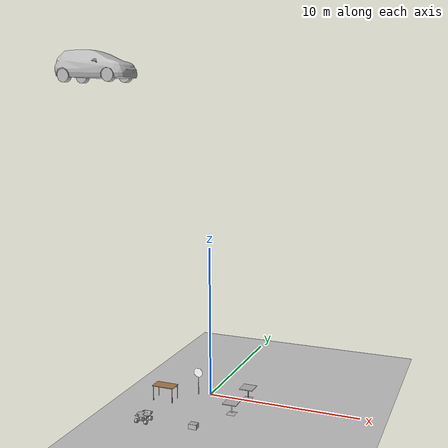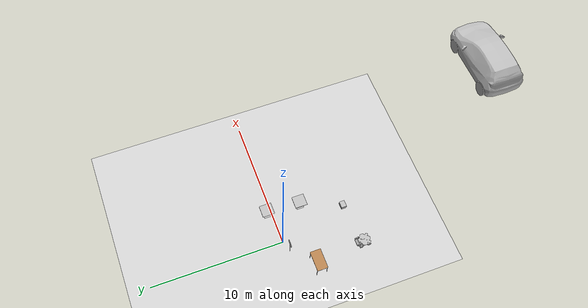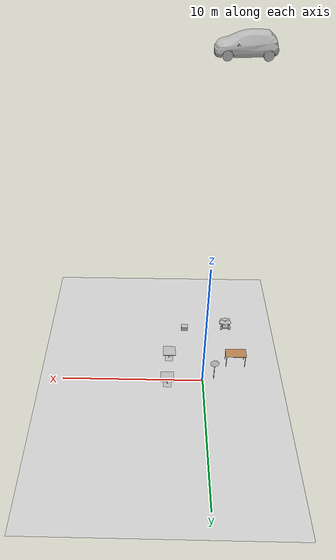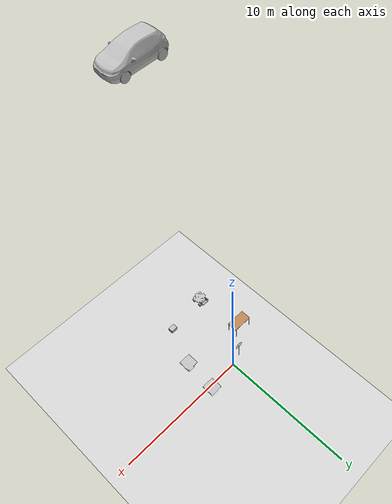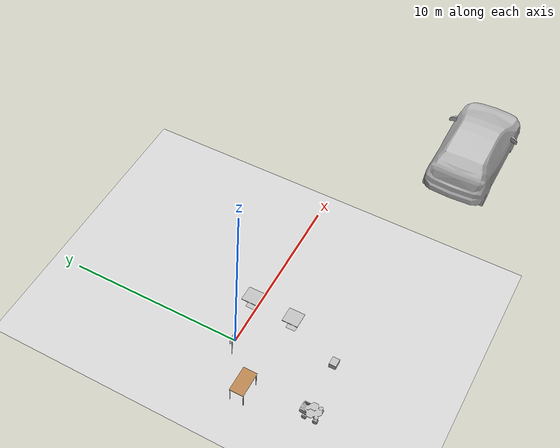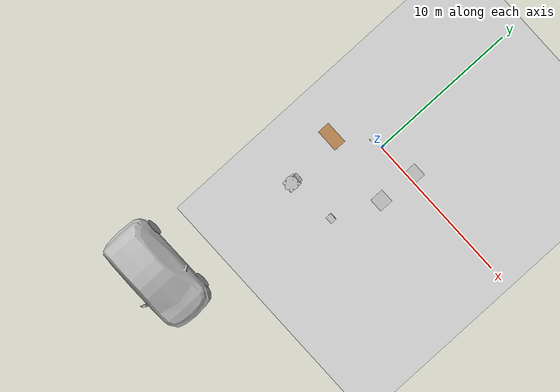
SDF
<sdf version="1.7">
 <world name="default">
  <light name="sun" type="directional">
   <pose>0 0 10 0 -0 0</pose>
   <diffuse>0.8 0.8 0.8 1</diffuse>
   <specular>0.2 0.2 0.2 1</specular>
   <attenuation>
    <range>1000</range>
    <constant>0.9</constant>
    <linear>0.01</linear>
    <quadratic>0.001</quadratic>
   </attenuation>
   <direction>-0.5 0.1 -0.9</direction>
   <spot><inner_angle>0</inner_angle><outer_angle>0</outer_angle><falloff>0</falloff></spot>
  </light>
  <model name="ground_plane">
   <static>1</static>
   <link name="link">
    <collision name="collision">
     <geometry><plane><normal>0 0 1</normal><size>100 100</size></plane></geometry>
     <surface>
      <contact><collide_bitmask>65535</collide_bitmask></contact>
      <friction><ode><mu>100</mu><mu2>50</mu2></ode></friction>
     </surface>
    </collision>
    <visual name="visual">
     <cast_shadows>0</cast_shadows>
     <geometry><plane><normal>0 0 1</normal><size>100 100</size></plane></geometry>
     <material>
      <script><uri>file://media/materials/scripts/gazebo.material</uri><name>Gazebo/Grey</name></script>
     </material>
    </visual>
   </link>
  </model>
  <gravity>0 0 -9.8</gravity>
  <magnetic_field>6e-06 2.3e-05 -4.2e-05</magnetic_field>
  <atmosphere type="adiabatic"/>
  <physics type="ode">
   <max_step_size>0.001</max_step_size>
   <real_time_factor>1</real_time_factor>
   <real_time_update_rate>1000</real_time_update_rate>
  </physics>
  <scene><ambient>0.4 0.4 0.4 1</ambient><background>0.7 0.7 0.7 1</background><shadows>1</shadows></scene>
  <audio><device>default</device></audio>
  <spherical_coordinates>
   <surface_model>EARTH_WGS84</surface_model>
   <latitude_deg>0</latitude_deg>
   <longitude_deg>0</longitude_deg>
   <elevation>0</elevation>
   <heading_deg>0</heading_deg>
  </spherical_coordinates>
  <model name="cafe_table">
   <static>1</static>
   <link name="link">
    <collision name="surface">
     <pose>0 0 0.755 0 -0 0</pose>
     <geometry><box><size>0.913 0.913 0.04</size></box></geometry>
    </collision>
    <collision name="column">
     <pose>0 0 0.37 0 -0 0</pose>
     <geometry><box><size>0.042 0.042 0.74</size></box></geometry>
    </collision>
    <collision name="base">
     <pose>0 0 0.02 0 -0 0</pose>
     <geometry><box><size>0.56 0.56 0.04</size></box></geometry>
    </collision>
    <visual name="visual">
     <geometry><mesh><uri>model://cafe_table/meshes/cafe_table.dae</uri></mesh></geometry>
    </visual>
   </link>
   <pose>2.51244 0.340404 0 0 -0 0</pose>
  </model>
  <model name="cafe_table_0">
   <static>1</static>
   <link name="link">
    <collision name="surface">
     <pose>0 0 0.755 0 -0 0</pose>
     <geometry><box><size>0.913 0.913 0.04</size></box></geometry>
    </collision>
    <collision name="column">
     <pose>0 0 0.37 0 -0 0</pose>
     <geometry><box><size>0.042 0.042 0.74</size></box></geometry>
    </collision>
    <collision name="base">
     <pose>0 0 0.02 0 -0 0</pose>
     <geometry><box><size>0.56 0.56 0.04</size></box></geometry>
    </collision>
    <visual name="visual">
     <geometry><mesh><uri>model://cafe_table/meshes/cafe_table.dae</uri></mesh></geometry>
    </visual>
   </link>
   <pose>2.36317 -2.17167 0 0 -0 0</pose>
  </model>
  <model name="cardboard_box">
   <pose>1.13694 -5.17495 0.3388 0 -0 0</pose>
   <link name="link">
    <inertial>
     <mass>2</mass>
     <inertia>
      <ixx>0.0416667</ixx>
      <ixy>0</ixy>
      <ixz>0</ixz>
      <iyy>0.0566667</iyy>
      <iyz>0</iyz>
      <izz>0.0683333</izz>
     </inertia>
    </inertial>
    <collision name="collision">
     <geometry><box><size>0.5 0.4 0.3</size></box></geometry>
     <surface>
      <friction><ode><mu>1</mu><mu2>1</mu2></ode></friction>
      <contact><ode><kp>1e+07</kp><kd>1</kd><min_depth>0.001</min_depth><max_vel>0.1</max_vel></ode></contact>
     </surface>
    </collision>
    <visual name="visual">
     <pose>0 0 -0.15 0 -0 0</pose>
     <geometry>
      <mesh><uri>model://cardboard_box/meshes/cardboard_box.dae</uri><scale>1.25932 1.00745 0.755591</scale></mesh>
     </geometry>
    </visual>
   </link>
  </model>
  <model name="hatchback">
   <static>1</static>
   <link name="link">
    <collision name="collision">
     <pose>0 0 0 0 -0 1.5708</pose>
     <geometry>
      <mesh><scale>0.0254 0.0254 0.0254</scale><uri>model://hatchback/meshes/hatchback.obj</uri></mesh>
     </geometry>
    </collision>
    <visual name="visual">
     <pose>0 0 0 0 -0 1.5708</pose>
     <geometry>
      <mesh><scale>0.0254 0.0254 0.0254</scale><uri>model://hatchback/meshes/hatchback.obj</uri></mesh>
     </geometry>
    </visual>
   </link>
   <pose>-2.38399 -9.06073 20 0 -0 0</pose>
  </model>
  <model name="mars_rover">
   <static>1</static>
   <link name="link">
    <collision name="solar_panel_collision">
     <pose>0 -0.06945 0.47293 0 -0 0</pose>
     <geometry><box><size>0.87974 0.8821 0.02602</size></box></geometry>
    </collision>
    <collision name="chassis_collision">
     <pose>0 -0.05 0.31475 0 -0 0</pose>
     <geometry><box><size>0.49522 0.67401 0.28915</size></box></geometry>
    </collision>
    <collision name="rear_left_bumper_collision">
     <pose>0.30107 0.3835 0.38976 0 -0 0</pose>
     <geometry><box><size>0.04442 0.38897 0.07918</size></box></geometry>
    </collision>
    <collision name="rear_right_bumper_collision">
     <pose>-0.30107 0.3835 0.38976 0 -0 0</pose>
     <geometry><box><size>0.04442 0.38897 0.07918</size></box></geometry>
    </collision>
    <collision name="rear_bumper_collision">
     <pose>0 0.59414 0.38976 0 -0 0</pose>
     <geometry><box><size>0.56656 0.04442 0.07918</size></box></geometry>
    </collision>
    <collision name="bin_back_panel_collision">
     <pose>0 0.47 0.32114 0.69137 -0 0</pose>
     <geometry><box><size>0.43774 0.212366 0.05173</size></box></geometry>
    </collision>
    <collision name="bin_left_panel_collision1">
     <pose>0.22615 0.32897 0.33193 0 -0 0</pose>
     <geometry><box><size>0.01116 0.19338 0.16304</size></box></geometry>
    </collision>
    <collision name="bin_left_panel_collision2">
     <pose>0.22615 0.471 0.39308 0 -0 0</pose>
     <geometry><box><size>0.01116 0.15 0.04</size></box></geometry>
    </collision>
    <collision name="bin_left_panel_collision3">
     <pose>0.22615 0.45 0.35308 0 -0 0</pose>
     <geometry><box><size>0.01116 0.15 0.04</size></box></geometry>
    </collision>
    <collision name="bin_left_panel_collision4">
     <pose>0.22615 0.39308 0.31308 0 -0 0</pose>
     <geometry><box><size>0.01116 0.15 0.04</size></box></geometry>
    </collision>
    <collision name="bin_right_panel_collision1">
     <pose>-0.22615 0.32897 0.33193 0 -0 0</pose>
     <geometry><box><size>0.01116 0.19338 0.16304</size></box></geometry>
    </collision>
    <collision name="bin_right_panel_collision2">
     <pose>-0.22615 0.471 0.39308 0 -0 0</pose>
     <geometry><box><size>0.01116 0.15 0.04</size></box></geometry>
    </collision>
    <collision name="bin_right_panel_collision3">
     <pose>-0.22615 0.45 0.35308 0 -0 0</pose>
     <geometry><box><size>0.01116 0.15 0.04</size></box></geometry>
    </collision>
    <collision name="bin_right_panel_collision4">
     <pose>-0.22615 0.39308 0.31308 0 -0 0</pose>
     <geometry><box><size>0.01116 0.15 0.04</size></box></geometry>
    </collision>
    <collision name="bin_front_panel_collision">
     <pose>0 0.30047 0.32114 2.26207 -0 0</pose>
     <geometry><box><size>0.43774 0.212366 0.05173</size></box></geometry>
    </collision>
    <collision name="front_left_wheel_collision">
     <pose>0.31103 -0.32115 0.1358 1.5707 0 1.5707</pose>
     <geometry><cylinder><radius>0.1358</radius><length>0.1641</length></cylinder></geometry>
    </collision>
    <collision name="front_right_wheel_collision">
     <pose>-0.31103 -0.32115 0.1358 1.5707 0 1.5707</pose>
     <geometry><cylinder><radius>0.1358</radius><length>0.1641</length></cylinder></geometry>
    </collision>
    <collision name="rear_left_wheel_collision">
     <pose>0.31103 0.28049 0.1358 1.5707 0 1.5707</pose>
     <geometry><cylinder><radius>0.1358</radius><length>0.1641</length></cylinder></geometry>
    </collision>
    <collision name="rear_right_wheel_collision">
     <pose>-0.31103 0.28049 0.1358 1.5707 0 1.5707</pose>
     <geometry><cylinder><radius>0.1358</radius><length>0.1641</length></cylinder></geometry>
    </collision>
    <visual name="visual">
     <geometry><mesh><uri>model://mars_rover/meshes/rover.dae</uri></mesh></geometry>
    </visual>
   </link>
   <pose>-2.04198 -5.47874 0.2 0 -0 0</pose>
  </model>
  <model name="Stop Sign">
   <static>1</static>
   <link name="link">
    <collision name="collision">
     <geometry><mesh><uri>model://stop_sign/meshes/stop_sign.dae</uri></mesh></geometry>
    </collision>
    <visual name="visual">
     <geometry><mesh><uri>model://stop_sign/meshes/stop_sign.dae</uri></mesh></geometry>
     <material>
      <script>
       <uri>model://stop_sign/materials/scripts</uri>
       <uri>model://stop_sign/materials/textures</uri>
       <name>StopSign/Diffuse</name>
      </script>
     </material>
    </visual>
   </link>
   <pose>-0.814874 -0.225447 0 0 -0 0</pose>
  </model>
  <model name="table">
   <static>1</static>
   <link name="link">
    <collision name="surface">
     <pose>0 0 1 0 -0 0</pose>
     <geometry><box><size>1.5 0.8 0.03</size></box></geometry>
     <surface><friction><ode><mu>0.6</mu><mu2>0.6</mu2></ode></friction></surface>
    </collision>
    <visual name="visual1">
     <pose>0 0 1 0 -0 0</pose>
     <geometry><box><size>1.5 0.8 0.03</size></box></geometry>
     <material>
      <script><uri>file://media/materials/scripts/gazebo.material</uri><name>Gazebo/Wood</name></script>
     </material>
    </visual>
    <collision name="front_left_leg">
     <pose>0.68 0.38 0.5 0 -0 0</pose>
     <geometry><cylinder><radius>0.02</radius><length>1</length></cylinder></geometry>
    </collision>
    <visual name="front_left_leg">
     <pose>0.68 0.38 0.5 0 -0 0</pose>
     <geometry><cylinder><radius>0.02</radius><length>1</length></cylinder></geometry>
     <material>
      <script><uri>file://media/materials/scripts/gazebo.material</uri><name>Gazebo/Grey</name></script>
     </material>
    </visual>
    <collision name="front_right_leg">
     <pose>0.68 -0.38 0.5 0 -0 0</pose>
     <geometry><cylinder><radius>0.02</radius><length>1</length></cylinder></geometry>
    </collision>
    <visual name="front_right_leg">
     <pose>0.68 -0.38 0.5 0 -0 0</pose>
     <geometry><cylinder><radius>0.02</radius><length>1</length></cylinder></geometry>
     <material>
      <script><uri>file://media/materials/scripts/gazebo.material</uri><name>Gazebo/Grey</name></script>
     </material>
    </visual>
    <collision name="back_right_leg">
     <pose>-0.68 -0.38 0.5 0 -0 0</pose>
     <geometry><cylinder><radius>0.02</radius><length>1</length></cylinder></geometry>
    </collision>
    <visual name="back_right_leg">
     <pose>-0.68 -0.38 0.5 0 -0 0</pose>
     <geometry><cylinder><radius>0.02</radius><length>1</length></cylinder></geometry>
     <material>
      <script><uri>file://media/materials/scripts/gazebo.material</uri><name>Gazebo/Grey</name></script>
     </material>
    </visual>
    <collision name="back_left_leg">
     <pose>-0.68 0.38 0.5 0 -0 0</pose>
     <geometry><cylinder><radius>0.02</radius><length>1</length></cylinder></geometry>
    </collision>
    <visual name="back_left_leg">
     <pose>-0.68 0.38 0.5 0 -0 0</pose>
     <geometry><cylinder><radius>0.02</radius><length>1</length></cylinder></geometry>
     <material>
      <script><uri>file://media/materials/scripts/gazebo.material</uri><name>Gazebo/Grey</name></script>
     </material>
    </visual>
   </link>
   <pose>-2.48177 -1.80136 0 0 -0 0</pose>
  </model>
 </world>
</sdf>
